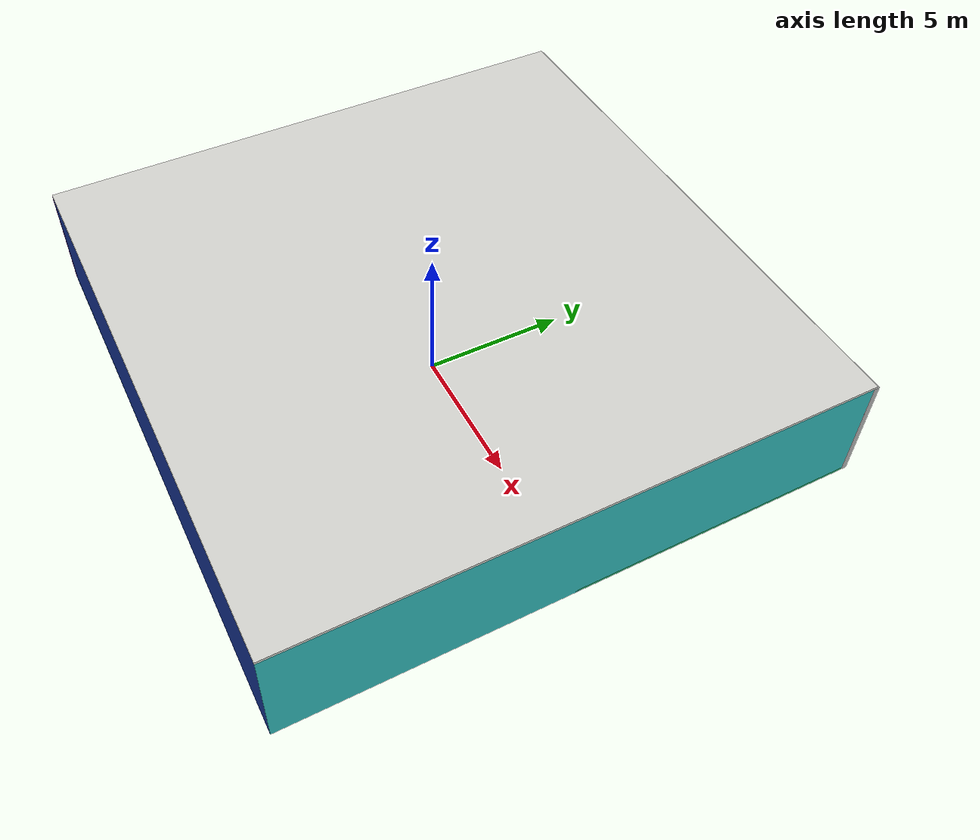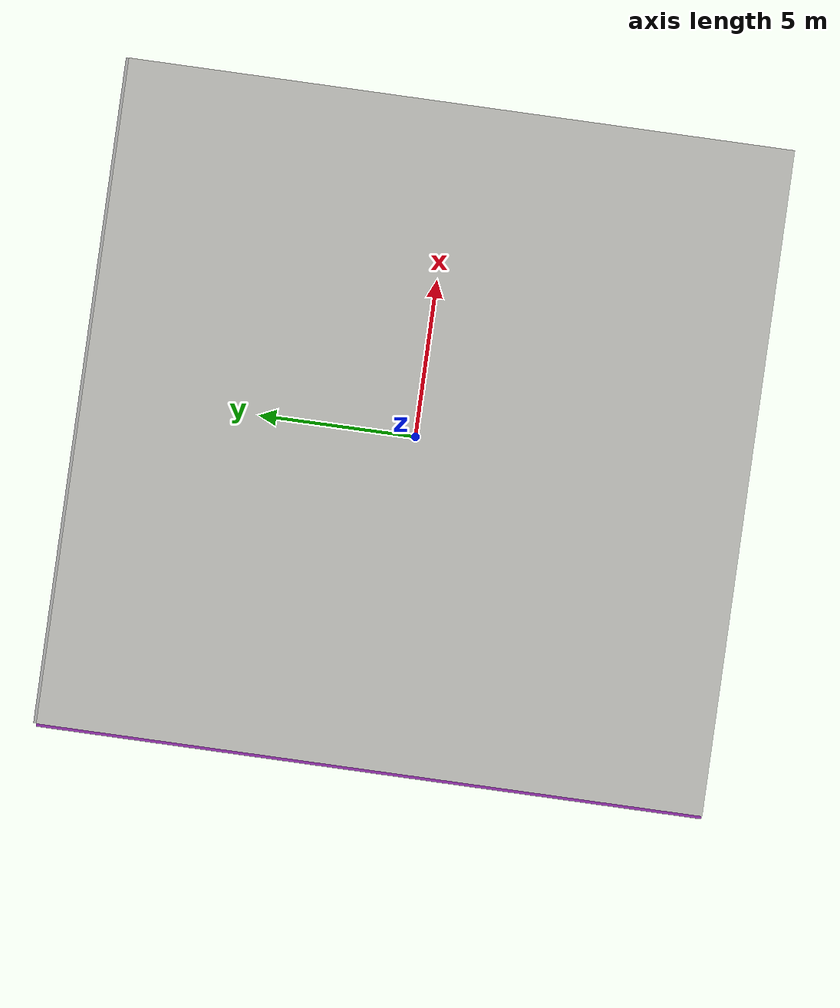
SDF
<sdf version="1.4">
 <world name="default">
  <physics type="ode">
   <max_step_size>0.001</max_step_size>
   <real_time_factor>1</real_time_factor>
   <real_time_update_rate>1000</real_time_update_rate>
   <gravity>0 0 -9.8</gravity>
  </physics>
  <scene><ambient>0.4 0.4 0.4 1</ambient><background>0.7 0.7 0.7 1</background><shadows>1</shadows></scene>
  <model name="Surrounding">
   <static>1</static>
   <link name="Ceiling">
    <collision name="Ceiling_Collision"><geometry><box><size>20 20 0.1</size></box></geometry></collision>
    <visual name="Ceiling_Visual">
     <geometry><box><size>20 20 0.1</size></box></geometry>
     <material>
      <script><uri>file://media/materials/scripts/gazebo.material</uri><name>Gazebo/CeilingTiled</name></script>
     </material>
    </visual>
    <pose>0 0 4.05 0 0 0</pose>
   </link>
   <link name="Wall_South">
    <collision name="Wall_South_Collision">
     <geometry><box><size>20 0 4</size></box></geometry>
     <pose>0 0 2 0 -0 0</pose>
    </collision>
    <visual name="Wall_South_Visual">
     <pose>0 0 2 0 -0 0</pose>
     <geometry><box><size>20 0 4</size></box></geometry>
     <material>
      <script><uri>file://media/materials/scripts/gazebo.material</uri><name>Gazebo/Blue</name></script>
     </material>
    </visual>
    <velocity_decay><linear>0</linear><angular>0</angular></velocity_decay>
    <pose>0 -10 0 0 -0 0</pose>
   </link>
   <link name="Wall_East">
    <collision name="Wall_21_Collision">
     <geometry><box><size>20 0 4</size></box></geometry>
     <pose>0 0 2 0 -0 0</pose>
    </collision>
    <visual name="Wall_21_Visual">
     <pose>0 0 2 0 -0 0</pose>
     <geometry><box><size>20 0 4</size></box></geometry>
     <material>
      <script>
       <uri>file://media/materials/scripts/gazebo.material</uri>
       <name>Gazebo/TurquoiseGlowOutline</name>
      </script>
     </material>
    </visual>
    <velocity_decay><linear>0</linear><angular>0</angular></velocity_decay>
    <pose>10 0 0 0 -0 1.5708</pose>
   </link>
   <link name="Wall_North">
    <collision name="Wall_22_Collision">
     <geometry><box><size>20 0.2 4</size></box></geometry>
     <pose>0 0 2 0 -0 0</pose>
    </collision>
    <visual name="Wall_22_Visual">
     <pose>0 0 2 0 -0 0</pose>
     <geometry><box><size>20 0.2 4</size></box></geometry>
     <material>
      <script><uri>file://media/materials/scripts/gazebo.material</uri><name>Gazebo/LightOn</name></script>
     </material>
    </visual>
    <velocity_decay><linear>0</linear><angular>0</angular></velocity_decay>
    <pose>0 10 0 0 -0 0</pose>
   </link>
   <link name="Wall_West">
    <collision name="Wall_23_Collision">
     <geometry><box><size>20 0.2 4</size></box></geometry>
     <pose>0 0 2 0 -0 0</pose>
    </collision>
    <visual name="Wall_23_Visual">
     <pose>0 0 2 0 -0 0</pose>
     <geometry><box><size>20 0.2 4</size></box></geometry>
     <material>
      <script><uri>file://media/materials/scripts/gazebo.material</uri><name>Gazebo/Purple</name></script>
     </material>
    </visual>
    <velocity_decay><linear>0</linear><angular>0</angular></velocity_decay>
    <pose>-10 0 0 0 0 -1.5708</pose>
   </link>
   <link name="Ground_link">
    <collision name="collision">
     <pose>0 0 .05 0 -0 0</pose>
     <geometry><box><size>20 20 0.1</size></box></geometry>
    </collision>
    <visual name="visual">
     <pose>0 0 .05 0 -0 0</pose>
     <geometry><box><size>20 20 0.1</size></box></geometry>
     <material>
      <script><uri>file://media/materials/scripts/gazebo.material</uri><name>Gazebo/GreenTransparent</name></script>
     </material>
    </visual>
   </link>
   <static>1</static>
  </model>
  <spherical_coordinates>
   <surface_model>EARTH_WGS84</surface_model>
   <latitude_deg>0</latitude_deg>
   <longitude_deg>0</longitude_deg>
   <elevation>0</elevation>
   <heading_deg>0</heading_deg>
  </spherical_coordinates>
  <light name="lightball_0" type="diffuse">
   <diffuse>0.8 0.8 0.8 1</diffuse>
   <specular>0.2 0.2 0.2 1</specular>
   <attenuation>
    <range>100</range>
    <constant>0.7</constant>
    <linear>0.01</linear>
    <quadratic>0.001</quadratic>
   </attenuation>
   <direction>-0.5 0.1 -0.9</direction>
   <pose>-5.81830223577 7.3080956486 3.219868459 0 0 0</pose>
  </light>
  <light name="lightball_1" type="diffuse">
   <diffuse>0.8 0.8 0.8 1</diffuse>
   <specular>0.2 0.2 0.2 1</specular>
   <attenuation>
    <range>100</range>
    <constant>0.7</constant>
    <linear>0.01</linear>
    <quadratic>0.001</quadratic>
   </attenuation>
   <direction>-0.5 0.1 -0.9</direction>
   <pose>5.00678839094 5.62857862502 2.78287062828 0 0 0</pose>
  </light>
  <light name="lightball_2" type="diffuse">
   <diffuse>0.8 0.8 0.8 1</diffuse>
   <specular>0.2 0.2 0.2 1</specular>
   <attenuation>
    <range>100</range>
    <constant>0.7</constant>
    <linear>0.01</linear>
    <quadratic>0.001</quadratic>
   </attenuation>
   <direction>-0.5 0.1 -0.9</direction>
   <pose>-6.14728460702 -9.06545463103 2.31202292666 0 0 0</pose>
  </light>
  <light name="lightball_3" type="diffuse">
   <diffuse>0.8 0.8 0.8 1</diffuse>
   <specular>0.2 0.2 0.2 1</specular>
   <attenuation>
    <range>100</range>
    <constant>0.7</constant>
    <linear>0.01</linear>
    <quadratic>0.001</quadratic>
   </attenuation>
   <direction>-0.5 0.1 -0.9</direction>
   <pose>-9.69745660529 0.467666262688 3.16975518133 0 0 0</pose>
  </light>
  <light name="lightball_4" type="diffuse">
   <diffuse>0.8 0.8 0.8 1</diffuse>
   <specular>0.2 0.2 0.2 1</specular>
   <attenuation>
    <range>100</range>
    <constant>0.7</constant>
    <linear>0.01</linear>
    <quadratic>0.001</quadratic>
   </attenuation>
   <direction>-0.5 0.1 -0.9</direction>
   <pose>4.02023228625 -7.91576173144 1.9598348558 0 0 0</pose>
  </light>
  <include><uri>model://cabinet</uri><pose>-5.10993281532 -8.16678208926 0 0 0 1.03276323239</pose></include>
  <include>
   <uri>model://construction_cone</uri>
   <pose>-4.79813525391 4.7392112289 0 0 0 2.62394392471</pose>
  </include>
  <include>
   <uri>model://textured_shapes</uri>
   <pose>3.90584225737 3.77770262295 0 0 0 2.258557425</pose>
  </include>
  <include>
   <uri>model://textured_shapes</uri>
   <pose>7.10789726606 -7.42770353644 0 0 0 1.29835506926</pose>
  </include>
  <include>
   <uri>model://construction_cone</uri>
   <pose>7.29057294552 1.72351827263 0 0 0 0.946817514847</pose>
  </include>
 </world>
</sdf>

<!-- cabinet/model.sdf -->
<sdf version="1.5">
  <model name="cabinet">
    <static>true</static>
    <link name="cabinet_bottom_plate">
      <inertial>
        <pose>0 0 -1 0 0 0</pose>
        <inertia>
          <ixx>2.050000</ixx>
          <ixy>0</ixy>
          <ixz>0</ixz>
          <iyy>2.050000</iyy>
          <iyz>0</iyz>
          <izz>2.050000</izz>
        </inertia>
        <mass>25.000000</mass>
      </inertial>
      <collision name="cabinet_bottom_plate_geom">
        <pose>0 0 0.010000 0 0 0</pose>
        <geometry>
          <box>
            <size>0.450000 0.450000 0.020000</size>
          </box>
        </geometry>
      </collision>
      <visual name="cabinet_bottom_plate_geom_visual">
        <pose>0 0 0.010000 0 0 0</pose>
        <geometry>
          <box>
            <size>0.450000 0.450000 0.020000</size>
          </box>
        </geometry>
        <material>
          <script>
            <uri>model://media/materials/scripts/gazebo.material</uri>
            <name>Gazebo/Wood</name>
          </script>
        </material>
      </visual>
      <collision name="cabinet_bottom_plate_geom_cabinet_back_plate">
        <pose>0.235000 0 0.510000 0 0 0</pose>
        <geometry>
          <box>
            <size>0.020000 0.450000 1.020000</size>
          </box>
        </geometry>
      </collision>
      <visual name="cabinet_bottom_plate_geom_cabinet_back_plate_visual">
        <pose>0.235000 0 0.510000 0 0 0</pose>
        <geometry>
          <box>
            <size>0.020000 0.450000 1.020000</size>
          </box>
        </geometry>
        <material>
          <script>
            <uri>model://media/materials/scripts/gazebo.material</uri>
            <name>Gazebo/Wood</name>
          </script>
        </material>
      </visual>
      <collision name="cabinet_bottom_plate_geom_cabinet_left_plate">
        <pose>0 0.235000 0.510000 0 0 0</pose>
        <geometry>
          <box>
            <size>0.450000 0.020000 1.020000</size>
          </box>
        </geometry>
      </collision>
      <visual name="cabinet_bottom_plate_geom_cabinet_left_plate_visual">
        <pose>0 0.235000 0.510000 0 0 0</pose>
        <geometry>
          <box>
            <size>0.450000 0.020000 1.020000</size>
          </box>
        </geometry>
        <material>
          <script>
            <uri>model://media/materials/scripts/gazebo.material</uri>
            <name>Gazebo/Wood</name>
          </script>
        </material>
      </visual>
      <collision name="cabinet_bottom_plate_geom_cabinet_middle_plate">
        <pose>0 0 0.510000 0 0 0</pose>
        <geometry>
          <box>
            <size>0.450000 0.450000 0.020000</size>
          </box>
        </geometry>
      </collision>
      <visual name="cabinet_bottom_plate_geom_cabinet_middle_plate_visual">
        <pose>0 0 0.510000 0 0 0</pose>
        <geometry>
          <box>
            <size>0.450000 0.450000 0.020000</size>
          </box>
        </geometry>
        <material>
          <script>
            <uri>model://media/materials/scripts/gazebo.material</uri>
            <name>Gazebo/Wood</name>
          </script>
        </material>
      </visual>
      <collision name="cabinet_bottom_plate_geom_cabinet_right_plate">
        <pose>0 -0.235000 0.510000 0 0 0</pose>
        <geometry>
          <box>
            <size>0.450000 0.020000 1.020000</size>
          </box>
        </geometry>
      </collision>
      <visual name="cabinet_bottom_plate_geom_cabinet_right_plate_visual">
        <pose>0 -0.235000 0.510000 0 0 0</pose>
        <geometry>
          <box>
            <size>0.450000 0.020000 1.020000</size>
          </box>
        </geometry>
        <material>
          <script>
            <uri>model://media/materials/scripts/gazebo.material</uri>
            <name>Gazebo/Wood</name>
          </script>
        </material>
      </visual>
      <collision name="cabinet_bottom_plate_geom_cabinet_top_plate">
        <pose>0 0 1.010000 0 0 0</pose>
        <geometry>
          <box>
            <size>0.450000 0.450000 0.020000</size>
          </box>
        </geometry>
      </collision>
      <visual name="cabinet_bottom_plate_geom_cabinet_top_plate_visual">
        <pose>0 0 1.010000 0 0 0</pose>
        <geometry>
          <box>
            <size>0.450000 0.450000 0.020000</size>
          </box>
        </geometry>
        <material>
          <script>
            <uri>model://media/materials/scripts/gazebo.material</uri>
            <name>Gazebo/Wood</name>
          </script>
        </material>
      </visual>
    </link>
  </model>
</sdf>

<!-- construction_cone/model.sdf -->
<sdf version="1.5">
  <model name="Construction Cone">
    <link name="link">
      <collision name="collision">
        <geometry>
          <mesh>
            <scale>10 10 10</scale>
            <uri>file://isr-testbed/construction_cone/meshes/construction_cone.dae</uri>
          </mesh>
        </geometry>
      </collision>
      <visual name="visual">
        <geometry>
          <mesh>
            <scale>10 10 10</scale>
            <uri>file://isr-testbed/construction_cone/meshes/construction_cone.dae</uri>
          </mesh>
        </geometry>
      </visual>
    </link>
  </model>
</sdf>

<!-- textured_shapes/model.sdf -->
<sdf version="1.6">
  <model name="textured_shapes">
    <pose>0 0 0.5 0 0 0</pose>
    <link name="box">
      <pose>0 -1.5 0 0 0 0</pose>
      <collision name="collision">
        <geometry>
          <box>
            <size>1 1 1</size>
          </box>
        </geometry>
      </collision>
      <visual name="visual">
        <geometry>
          <box>
            <size>1 1 1</size>
          </box>
        </geometry>
        <material>
          <script>
            <uri>model://../model_source/models/textured_shapes/materials/scripts</uri>
            <uri>model://../model_source/models/textured_shapes/materials/textures</uri>
            <name>TexturedShape/Squares</name>
          </script>
        </material>
      </visual>
    </link>
    <link name="sphere">
      <collision name="collision">
        <geometry>
          <sphere>
            <radius>0.5</radius>
          </sphere>
        </geometry>
      </collision>
      <visual name="visual">
        <geometry>
          <sphere>
            <radius>0.5</radius>
          </sphere>
        </geometry>
        <material>
          <script>
            <uri>model://../model_source/models/textured_shapes/materials/scripts</uri>
            <uri>model://../model_source/models/textured_shapes/materials/textures</uri>
            <name>TexturedShape/Squares</name>
          </script>
        </material>
      </visual>
    </link>
    <link name="cylinder">
      <pose>0 1.5 0 0 0 0</pose>
      <collision name="collision">
        <geometry>
          <cylinder>
            <radius>0.5</radius>
            <length>1</length>
          </cylinder>
        </geometry>
      </collision>
      <visual name="visual">
        <geometry>
          <cylinder>
            <radius>0.5</radius>
            <length>1</length>
          </cylinder>
        </geometry>
        <material>
          <script>
            <uri>model://../model_source/models/textured_shapes/materials/scripts</uri>
            <uri>model://../model_source/models/textured_shapes/materials/textures</uri>
            <name>TexturedShape/Squares</name>
          </script>
        </material>
      </visual>
    </link>
  </model>
</sdf>
